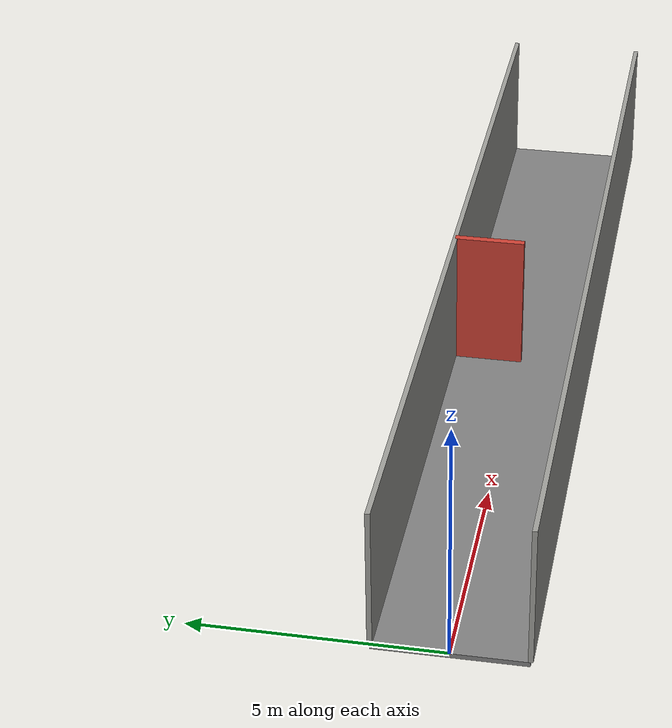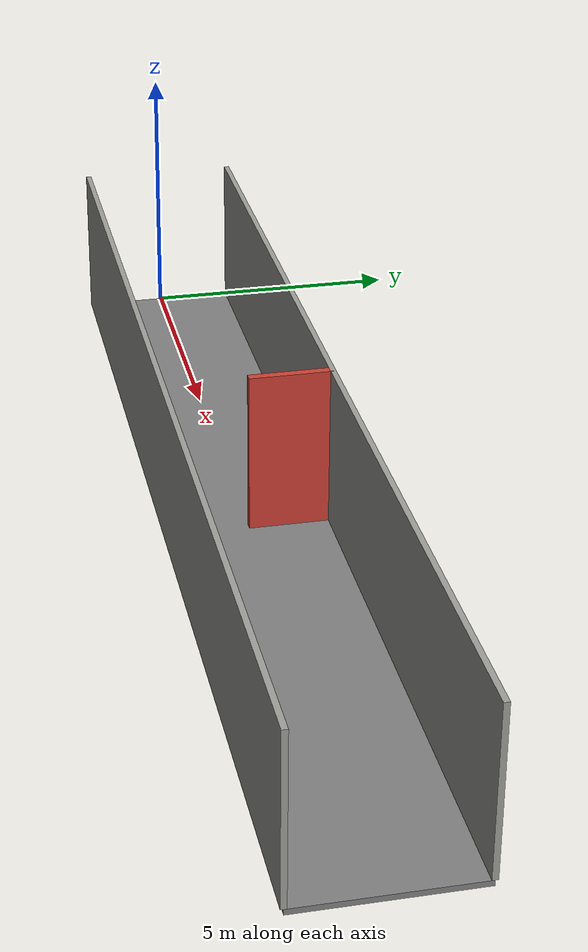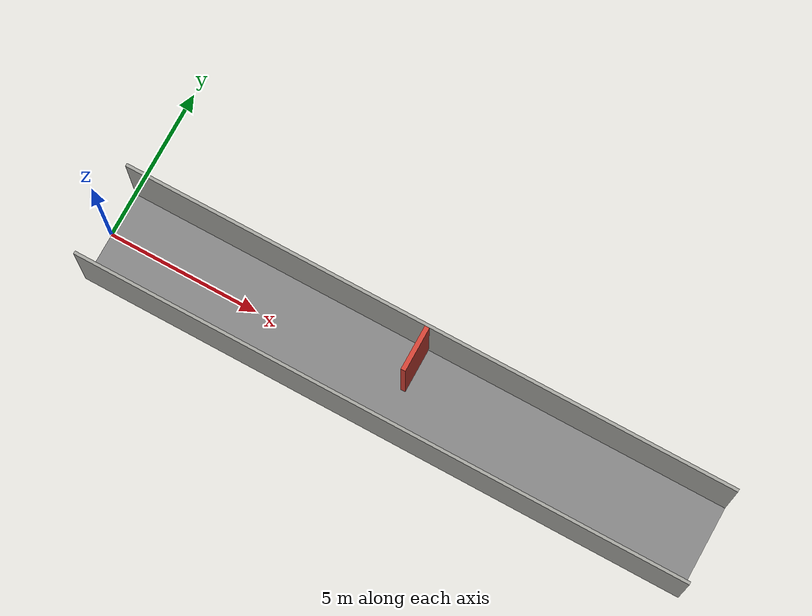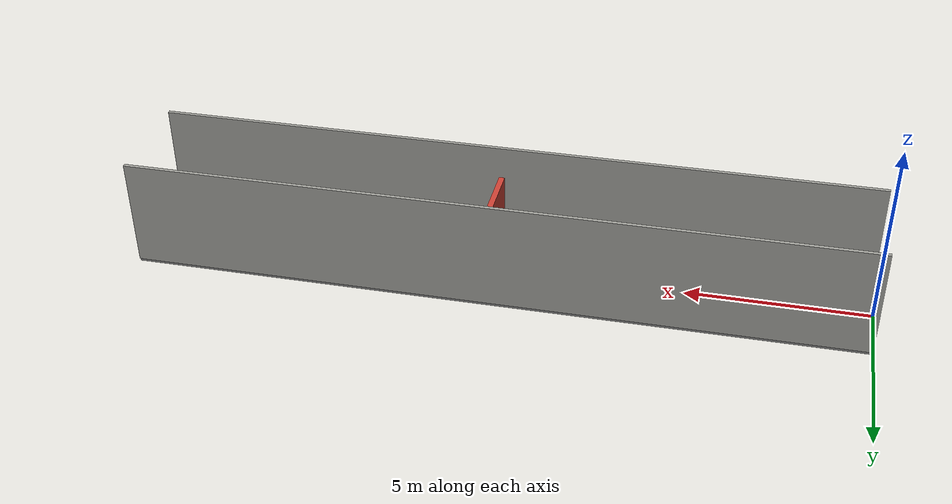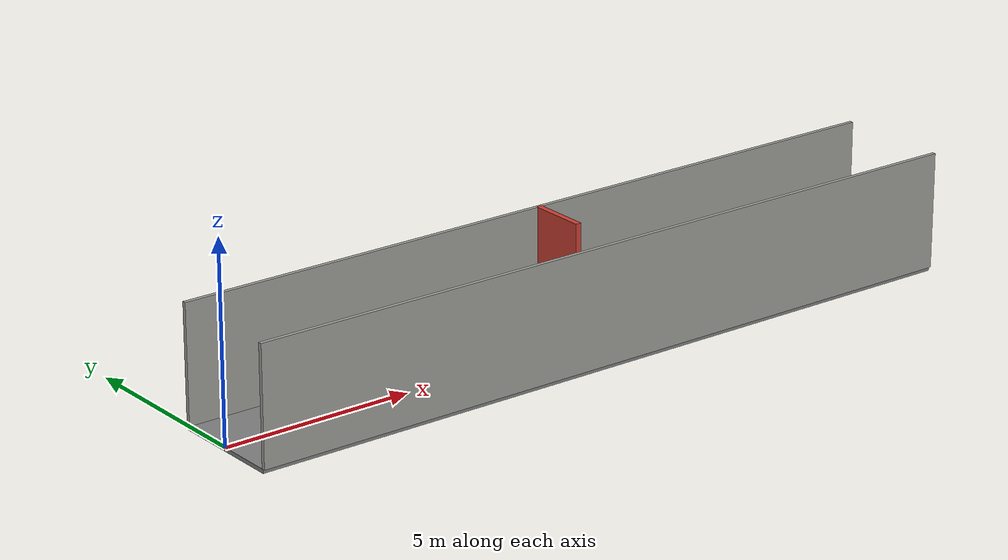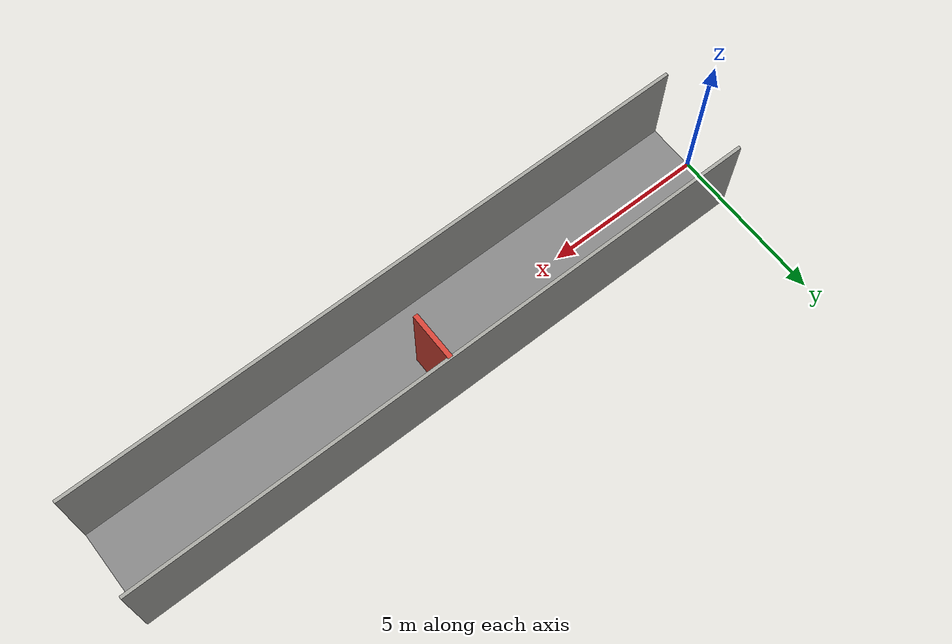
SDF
<?xml version="1.0" ?>
<sdf version="1.9">
  <world name="corridor_world">

    <!-- ===================== Required gz-sim systems ===================== -->
    <plugin filename="gz-sim-physics-system" name="gz::sim::systems::Physics"/>
    <plugin filename="gz-sim-user-commands-system" name="gz::sim::systems::UserCommands"/>
    <plugin filename="gz-sim-scene-broadcaster-system" name="gz::sim::systems::SceneBroadcaster"/>
    <plugin filename="gz-sim-sensors-system" name="gz::sim::systems::Sensors">
      <render_engine>ogre2</render_engine>
    </plugin>
    <plugin filename="gz-sim-imu-system" name="gz::sim::systems::Imu"/>
    <plugin filename="gz-sim-contact-system" name="gz::sim::systems::Contact"/>

    <physics name="1ms" type="ode">
      <max_step_size>0.001</max_step_size>
      <real_time_factor>1.0</real_time_factor>
    </physics>

    <gravity>0 0 -9.8</gravity>

    <scene>
      <ambient>0.6 0.6 0.6 1</ambient>
      <background>0.3 0.3 0.35 1</background>
      <shadows>true</shadows>
      <grid>false</grid>
    </scene>

    <light type="directional" name="sun">
      <cast_shadows>true</cast_shadows>
      <pose>0 0 10 0 0 0</pose>
      <diffuse>0.8 0.8 0.8 1</diffuse>
      <specular>0.2 0.2 0.2 1</specular>
      <direction>-0.4 0.2 -0.9</direction>
    </light>

    <model name="corridor_floor">
      <static>true</static>
      <pose>10 0 -0.05 0 0 0</pose>
      <link name="link">
        <collision name="collision">
          <geometry><box><size>20 3 0.1</size></box></geometry>
        </collision>
        <visual name="visual">
          <geometry><box><size>20 3 0.1</size></box></geometry>
          <material>
            <ambient>0.5 0.5 0.5 1</ambient>
            <diffuse>0.5 0.5 0.5 1</diffuse>
            <specular>0.1 0.1 0.1 1</specular>
          </material>
        </visual>
      </link>
    </model>

    <model name="corridor_wall_left">
      <static>true</static>
      <pose>10 1.5 1.5 0 0 0</pose>
      <link name="link">
        <collision name="collision">
          <geometry><box><size>20 0.1 3</size></box></geometry>
        </collision>
        <visual name="visual">
          <geometry><box><size>20 0.1 3</size></box></geometry>
          <material>
            <!-- flat, featureless concrete grey - no texture variation on purpose -->
            <ambient>0.62 0.62 0.60 1</ambient>
            <diffuse>0.62 0.62 0.60 1</diffuse>
            <specular>0.05 0.05 0.05 1</specular>
          </material>
        </visual>
      </link>
    </model>

    <model name="corridor_wall_right">
      <static>true</static>
      <pose>10 -1.5 1.5 0 0 0</pose>
      <link name="link">
        <collision name="collision">
          <geometry><box><size>20 0.1 3</size></box></geometry>
        </collision>
        <visual name="visual">
          <geometry><box><size>20 0.1 3</size></box></geometry>
          <material>
            <ambient>0.62 0.62 0.60 1</ambient>
            <diffuse>0.62 0.62 0.60 1</diffuse>
            <specular>0.05 0.05 0.05 1</specular>
          </material>
        </visual>
      </link>
    </model>

    <model name="shifting_wall">
      <static>false</static>
      <self_collide>false</self_collide>
      <pose>10 0.75 1.5 0 0 0</pose>
      <link name="panel_link">
        <kinematic>true</kinematic>
        <inertial>
          <mass>150.0</mass>
          <inertia>
            <ixx>50.0</ixx><iyy>50.0</iyy><izz>50.0</izz>
            <ixy>0</ixy><ixz>0</ixz><iyz>0</iyz>
          </inertia>
        </inertial>
        <collision name="collision">
          <geometry><box><size>0.15 1.5 3.0</size></box></geometry>
        </collision>
        <visual name="visual">
          <geometry><box><size>0.15 1.5 3.0</size></box></geometry>
          <material>
            <ambient>0.75 0.2 0.15 1</ambient>
            <diffuse>0.8 0.25 0.2 1</diffuse>
            <specular>0.2 0.2 0.2 1</specular>
          </material>
        </visual>
      </link>
    </model>

  </world>
</sdf>
